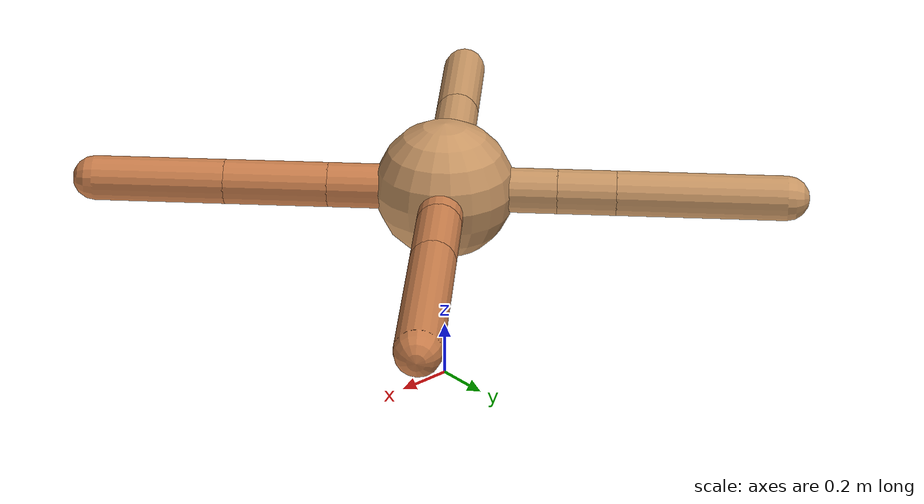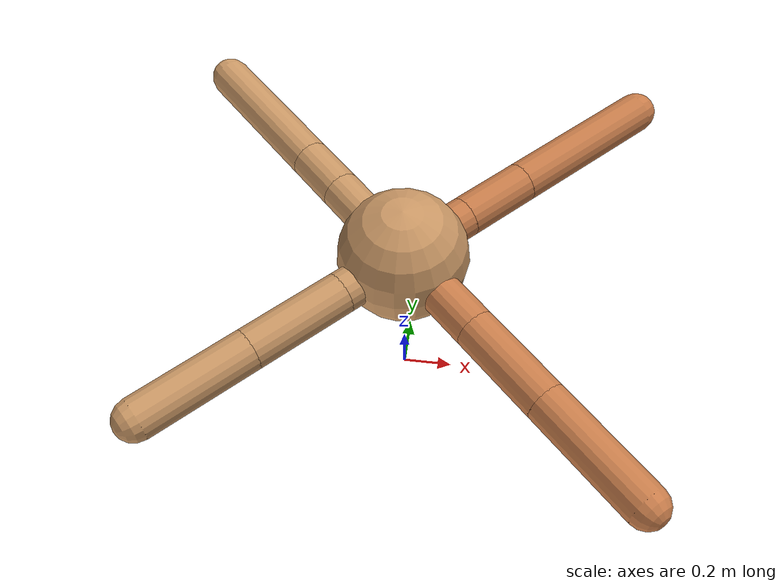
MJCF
<mujoco model="ant">
  <compiler angle="degree" coordinate="local" inertiafromgeom="true" />
  <option integrator="RK4" timestep="0.01" />
  <custom>
    <numeric data="0.0 0.0 0.55 1.0 0.0 0.0 0.0 0.0 1.0 0.0 -1.0 0.0 -1.0 0.0 1.0" name="init_qpos" />
  </custom>
  <default>
    <joint armature="1" damping="1" limited="true" />
    <geom conaffinity="0" condim="3" density="5.0" friction="1.5 0.1 0.1" margin="0.01" rgba="0.8 0.6 0.4 1" />
  </default>
  <worldbody>
    <body name="torso" pos="0 0 0.75">
      <geom name="torso_geom" pos="0 0 0" size="0.25" type="sphere" />

      <body name="front_left_leg" pos="0 0 0">
        <geom fromto="0.0 0.0 0.0 0.21120551522127481 0.21120551522127481 0.0" name="aux_1_geom" size="0.08" type="capsule" rgba=".8 .5 .3 1" />
        <body name="aux_1" pos="0.21120551522127481 0.21120551522127481 0.0">
          <joint axis="0 0 1" name="hip_1" pos="0.0 0.0 0.0" range="-40 40" type="hinge" />
          <geom fromto="0.0 0.0 0.0 0.20269835577456494 0.20269835577456494 0.0" name="left_leg_geom" size="0.08" type="capsule" rgba=".8 .5 .3 1" />
          <body pos="0.20269835577456494 0.20269835577456494 0.0" name="front_left_foot">
            <joint axis="-1 1 0" name="ankle_1" pos="0.0 0.0 0.0" range="30 100" type="hinge" />
            <geom fromto="0.0 0.0 0.0 0.4490621436068365 0.4490621436068365 0.0" name="left_ankle_geom" size="0.08" type="capsule" rgba=".8 .5 .3 1" />
          </body>
        </body>
      </body>
      <body name="front_right_leg" pos="0 0 0">
        <geom fromto="0.0 0.0 0.0 -0.2839304485091159 0.2839304485091159 0.0" name="aux_2_geom" size="0.08" type="capsule" />
        <body name="aux_2" pos="-0.2839304485091159 0.2839304485091159 0.0">
          <joint axis="0 0 1" name="hip_2" pos="0.0 0.0 0.0" range="-40 40" type="hinge" />
          <geom fromto="0.0 0.0 0.0 -0.14829204032936336 0.14829204032936336 0.0" name="right_leg_geom" size="0.08" type="capsule" />
          <body pos="-0.14829204032936336 0.14829204032936336 0.0" name="front_right_foot">
            <joint axis="1 1 0" name="ankle_2" pos="0.0 0.0 0.0" range="-100 -30" type="hinge" />
            <geom fromto="0.0 0.0 0.0 -0.4269100135719326 0.4269100135719326 0.0" name="right_ankle_geom" size="0.08" type="capsule" />
          </body>
        </body>
      </body>
      <body name="left_back_leg" pos="0 0 0">
        <geom fromto="0.0 0.0 0.0 -0.20201882417005015 -0.20201882417005015 0.0" name="aux_3_geom" size="0.08" type="capsule" />
        <body name="aux_3" pos="-0.20201882417005015 -0.20201882417005015 0.0">
          <joint axis="0 0 1" name="hip_3" pos="0.0 0.0 0.0" range="-40 40" type="hinge" />
          <geom fromto="0.0 0.0 0.0 -0.27886230122328365 -0.27886230122328365 0.0" name="back_leg_geom" size="0.08" type="capsule" />
          <body pos="-0.27886230122328365 -0.27886230122328365 0.0" name="left_back_foot">
            <joint axis="-1 1 0" name="ankle_3" pos="0.0 0.0 0.0" range="-100 -30" type="hinge" />
            <geom fromto="0.0 0.0 0.0 -0.31672868232915596 -0.31672868232915596 0.0" name="third_ankle_geom" size="0.08" type="capsule" />
          </body>
        </body>
      </body>
      <body name="right_back_leg" pos="0 0 0">
        <geom fromto="0.0 0.0 0.0 0.2951321860942823 -0.2951321860942823 0.0" name="aux_4_geom" size="0.08" type="capsule" rgba=".8 .5 .3 1" />
        <body name="aux_4" pos="0.2951321860942823 -0.2951321860942823 0.0">
          <joint axis="0 0 1" name="hip_4" pos="0.0 0.0 0.0" range="-40 40" type="hinge" />
          <geom fromto="0.0 0.0 0.0 0.2631847713194717 -0.2631847713194717 0.0" name="rightback_leg_geom" size="0.08" type="capsule" rgba=".8 .5 .3 1" />
          <body pos="0.2631847713194717 -0.2631847713194717 0.0" name="right_back_foot">
            <joint axis="1 1 0" name="ankle_4" pos="0.0 0.0 0.0" range="30 100" type="hinge" />
            <geom fromto="0.0 0.0 0.0 0.3347179768605876 -0.3347179768605876 0.0" name="fourth_ankle_geom" size="0.08" type="capsule" rgba=".8 .5 .3 1" />
          </body>
        </body>
      </body>
    </body>
  </worldbody>
  <actuator>
    <motor ctrllimited="true" ctrlrange="-1.0 1.0" joint="hip_4" gear="150" />
    <motor ctrllimited="true" ctrlrange="-1.0 1.0" joint="ankle_4" gear="150" />
    <motor ctrllimited="true" ctrlrange="-1.0 1.0" joint="hip_1" gear="150" />
    <motor ctrllimited="true" ctrlrange="-1.0 1.0" joint="ankle_1" gear="150" />
    <motor ctrllimited="true" ctrlrange="-1.0 1.0" joint="hip_2" gear="150" />
    <motor ctrllimited="true" ctrlrange="-1.0 1.0" joint="ankle_2" gear="150" />
    <motor ctrllimited="true" ctrlrange="-1.0 1.0" joint="hip_3" gear="150" />
    <motor ctrllimited="true" ctrlrange="-1.0 1.0" joint="ankle_3" gear="150" />
  </actuator>
</mujoco>
